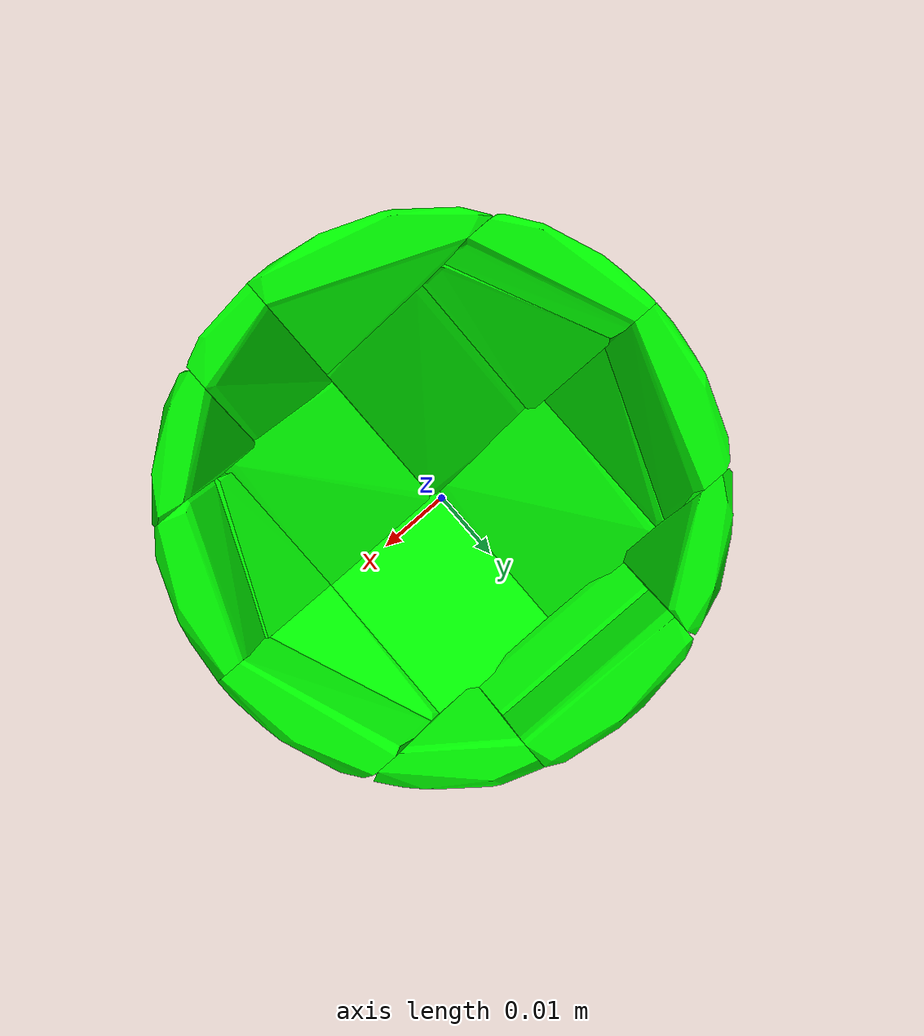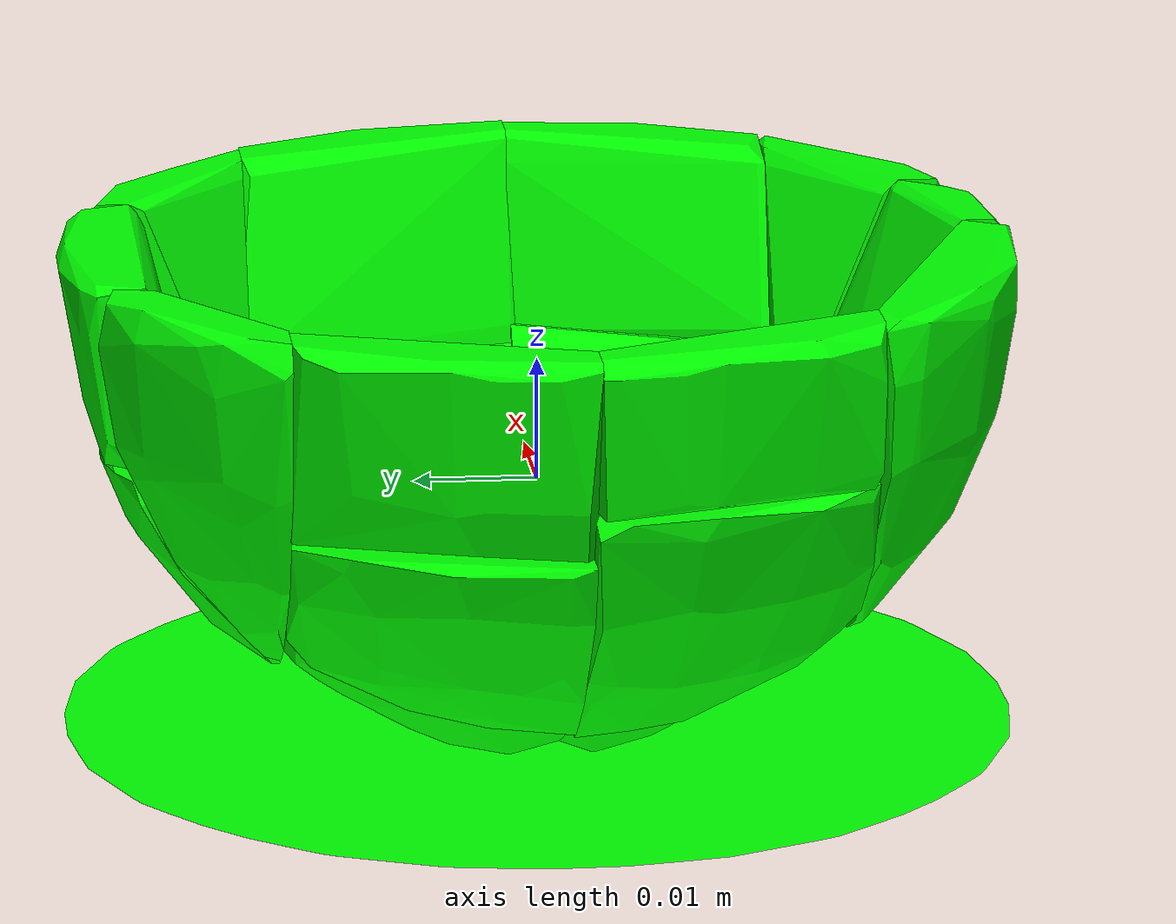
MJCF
<mujoco model="shapenetsem19">
  <asset>
    <mesh file="meshes/shapenetsem19/shapenetsem19_0.stl" name="shapenetsem19_0" scale="1 1 1"/>
    <mesh file="meshes/shapenetsem19/shapenetsem19_1.stl" name="shapenetsem19_1" scale="1 1 1"/>
    <mesh file="meshes/shapenetsem19/shapenetsem19_2.stl" name="shapenetsem19_2" scale="1 1 1"/>
    <mesh file="meshes/shapenetsem19/shapenetsem19_3.stl" name="shapenetsem19_3" scale="1 1 1"/>
    <mesh file="meshes/shapenetsem19/shapenetsem19_4.stl" name="shapenetsem19_4" scale="1 1 1"/>
    <mesh file="meshes/shapenetsem19/shapenetsem19_5.stl" name="shapenetsem19_5" scale="1 1 1"/>
    <mesh file="meshes/shapenetsem19/shapenetsem19_6.stl" name="shapenetsem19_6" scale="1 1 1"/>
    <mesh file="meshes/shapenetsem19/shapenetsem19_7.stl" name="shapenetsem19_7" scale="1 1 1"/>
    <mesh file="meshes/shapenetsem19/shapenetsem19_8.stl" name="shapenetsem19_8" scale="1 1 1"/>
    <mesh file="meshes/shapenetsem19/shapenetsem19_9.stl" name="shapenetsem19_9" scale="1 1 1"/>
    <mesh file="meshes/shapenetsem19/shapenetsem19_10.stl" name="shapenetsem19_10" scale="1 1 1"/>
    <mesh file="meshes/shapenetsem19/shapenetsem19_11.stl" name="shapenetsem19_11" scale="1 1 1"/>
    <mesh file="meshes/shapenetsem19/shapenetsem19_12.stl" name="shapenetsem19_12" scale="1 1 1"/>
    <mesh file="meshes/shapenetsem19/shapenetsem19_13.stl" name="shapenetsem19_13" scale="1 1 1"/>
    <mesh file="meshes/shapenetsem19/shapenetsem19_14.stl" name="shapenetsem19_14" scale="1 1 1"/>
    <mesh file="meshes/shapenetsem19/shapenetsem19_15.stl" name="shapenetsem19_15" scale="1 1 1"/>
    <mesh file="meshes/shapenetsem19/shapenetsem19_16.stl" name="shapenetsem19_16" scale="1 1 1"/>
    <mesh file="meshes/shapenetsem19/shapenetsem19_17.stl" name="shapenetsem19_17" scale="1 1 1"/>
    <mesh file="meshes/shapenetsem19/shapenetsem19_18.stl" name="shapenetsem19_18" scale="1 1 1"/>
    <mesh file="meshes/shapenetsem19/shapenetsem19_19.stl" name="shapenetsem19_19" scale="1 1 1"/>
  </asset>
  <worldbody>
    <body>
      <body name="collision">
        <geom pos="0 0 0" mesh="shapenetsem19_0" type="mesh" solimp="0.998 0.998 0.001" solref="0.001 1" density="100" friction="0.95 0.3 0.1" rgba="0 1 0 1" group="1" condim="4"/>
        <geom pos="0 0 0" mesh="shapenetsem19_1" type="mesh" solimp="0.998 0.998 0.001" solref="0.001 1" density="100" friction="0.95 0.3 0.1" rgba="0 1 0 1" group="1" condim="4"/>
        <geom pos="0 0 0" mesh="shapenetsem19_2" type="mesh" solimp="0.998 0.998 0.001" solref="0.001 1" density="100" friction="0.95 0.3 0.1" rgba="0 1 0 1" group="1" condim="4"/>
        <geom pos="0 0 0" mesh="shapenetsem19_3" type="mesh" solimp="0.998 0.998 0.001" solref="0.001 1" density="100" friction="0.95 0.3 0.1" rgba="0 1 0 1" group="1" condim="4"/>
        <geom pos="0 0 0" mesh="shapenetsem19_4" type="mesh" solimp="0.998 0.998 0.001" solref="0.001 1" density="100" friction="0.95 0.3 0.1" rgba="0 1 0 1" group="1" condim="4"/>
        <geom pos="0 0 0" mesh="shapenetsem19_5" type="mesh" solimp="0.998 0.998 0.001" solref="0.001 1" density="100" friction="0.95 0.3 0.1" rgba="0 1 0 1" group="1" condim="4"/>
        <geom pos="0 0 0" mesh="shapenetsem19_6" type="mesh" solimp="0.998 0.998 0.001" solref="0.001 1" density="100" friction="0.95 0.3 0.1" rgba="0 1 0 1" group="1" condim="4"/>
        <geom pos="0 0 0" mesh="shapenetsem19_7" type="mesh" solimp="0.998 0.998 0.001" solref="0.001 1" density="100" friction="0.95 0.3 0.1" rgba="0 1 0 1" group="1" condim="4"/>
        <geom pos="0 0 0" mesh="shapenetsem19_8" type="mesh" solimp="0.998 0.998 0.001" solref="0.001 1" density="100" friction="0.95 0.3 0.1" rgba="0 1 0 1" group="1" condim="4"/>
        <geom pos="0 0 0" mesh="shapenetsem19_9" type="mesh" solimp="0.998 0.998 0.001" solref="0.001 1" density="100" friction="0.95 0.3 0.1" rgba="0 1 0 1" group="1" condim="4"/>
        <geom pos="0 0 0" mesh="shapenetsem19_10" type="mesh" solimp="0.998 0.998 0.001" solref="0.001 1" density="100" friction="0.95 0.3 0.1" rgba="0 1 0 1" group="1" condim="4"/>
        <geom pos="0 0 0" mesh="shapenetsem19_11" type="mesh" solimp="0.998 0.998 0.001" solref="0.001 1" density="100" friction="0.95 0.3 0.1" rgba="0 1 0 1" group="1" condim="4"/>
        <geom pos="0 0 0" mesh="shapenetsem19_12" type="mesh" solimp="0.998 0.998 0.001" solref="0.001 1" density="100" friction="0.95 0.3 0.1" rgba="0 1 0 1" group="1" condim="4"/>
        <geom pos="0 0 0" mesh="shapenetsem19_13" type="mesh" solimp="0.998 0.998 0.001" solref="0.001 1" density="100" friction="0.95 0.3 0.1" rgba="0 1 0 1" group="1" condim="4"/>
        <geom pos="0 0 0" mesh="shapenetsem19_14" type="mesh" solimp="0.998 0.998 0.001" solref="0.001 1" density="100" friction="0.95 0.3 0.1" rgba="0 1 0 1" group="1" condim="4"/>
        <geom pos="0 0 0" mesh="shapenetsem19_15" type="mesh" solimp="0.998 0.998 0.001" solref="0.001 1" density="100" friction="0.95 0.3 0.1" rgba="0 1 0 1" group="1" condim="4"/>
        <geom pos="0 0 0" mesh="shapenetsem19_16" type="mesh" solimp="0.998 0.998 0.001" solref="0.001 1" density="100" friction="0.95 0.3 0.1" rgba="0 1 0 1" group="1" condim="4"/>
        <geom pos="0 0 0" mesh="shapenetsem19_17" type="mesh" solimp="0.998 0.998 0.001" solref="0.001 1" density="100" friction="0.95 0.3 0.1" rgba="0 1 0 1" group="1" condim="4"/>
        <geom pos="0 0 0" mesh="shapenetsem19_18" type="mesh" solimp="0.998 0.998 0.001" solref="0.001 1" density="100" friction="0.95 0.3 0.1" rgba="0 1 0 1" group="1" condim="4"/>
        <geom pos="0 0 0" mesh="shapenetsem19_19" type="mesh" solimp="0.998 0.998 0.001" solref="0.001 1" density="100" friction="0.95 0.3 0.1" rgba="0 1 0 1" group="1" condim="4"/>
      </body>
      <body name="visual">
        <geom pos="0 0 0" mesh="shapenetsem19_0" type="mesh" rgba="0 1 0 1" conaffinity="0" contype="0" group="0" mass="0.0001"/>
        <geom pos="0 0 0" mesh="shapenetsem19_1" type="mesh" rgba="0 1 0 1" conaffinity="0" contype="0" group="0" mass="0.0001"/>
        <geom pos="0 0 0" mesh="shapenetsem19_2" type="mesh" rgba="0 1 0 1" conaffinity="0" contype="0" group="0" mass="0.0001"/>
        <geom pos="0 0 0" mesh="shapenetsem19_3" type="mesh" rgba="0 1 0 1" conaffinity="0" contype="0" group="0" mass="0.0001"/>
        <geom pos="0 0 0" mesh="shapenetsem19_4" type="mesh" rgba="0 1 0 1" conaffinity="0" contype="0" group="0" mass="0.0001"/>
        <geom pos="0 0 0" mesh="shapenetsem19_5" type="mesh" rgba="0 1 0 1" conaffinity="0" contype="0" group="0" mass="0.0001"/>
        <geom pos="0 0 0" mesh="shapenetsem19_6" type="mesh" rgba="0 1 0 1" conaffinity="0" contype="0" group="0" mass="0.0001"/>
        <geom pos="0 0 0" mesh="shapenetsem19_7" type="mesh" rgba="0 1 0 1" conaffinity="0" contype="0" group="0" mass="0.0001"/>
        <geom pos="0 0 0" mesh="shapenetsem19_8" type="mesh" rgba="0 1 0 1" conaffinity="0" contype="0" group="0" mass="0.0001"/>
        <geom pos="0 0 0" mesh="shapenetsem19_9" type="mesh" rgba="0 1 0 1" conaffinity="0" contype="0" group="0" mass="0.0001"/>
        <geom pos="0 0 0" mesh="shapenetsem19_10" type="mesh" rgba="0 1 0 1" conaffinity="0" contype="0" group="0" mass="0.0001"/>
        <geom pos="0 0 0" mesh="shapenetsem19_11" type="mesh" rgba="0 1 0 1" conaffinity="0" contype="0" group="0" mass="0.0001"/>
        <geom pos="0 0 0" mesh="shapenetsem19_12" type="mesh" rgba="0 1 0 1" conaffinity="0" contype="0" group="0" mass="0.0001"/>
        <geom pos="0 0 0" mesh="shapenetsem19_13" type="mesh" rgba="0 1 0 1" conaffinity="0" contype="0" group="0" mass="0.0001"/>
        <geom pos="0 0 0" mesh="shapenetsem19_14" type="mesh" rgba="0 1 0 1" conaffinity="0" contype="0" group="0" mass="0.0001"/>
        <geom pos="0 0 0" mesh="shapenetsem19_15" type="mesh" rgba="0 1 0 1" conaffinity="0" contype="0" group="0" mass="0.0001"/>
        <geom pos="0 0 0" mesh="shapenetsem19_16" type="mesh" rgba="0 1 0 1" conaffinity="0" contype="0" group="0" mass="0.0001"/>
        <geom pos="0 0 0" mesh="shapenetsem19_17" type="mesh" rgba="0 1 0 1" conaffinity="0" contype="0" group="0" mass="0.0001"/>
        <geom pos="0 0 0" mesh="shapenetsem19_18" type="mesh" rgba="0 1 0 1" conaffinity="0" contype="0" group="0" mass="0.0001"/>
        <geom pos="0 0 0" mesh="shapenetsem19_19" type="mesh" rgba="0 1 0 1" conaffinity="0" contype="0" group="0" mass="0.0001"/>
      </body>
      <site rgba="0 0 0 0" size="0.005" pos="0 0 -0.06" name="bottom_site"/>
      <site rgba="0 0 0 0" size="0.005" pos="0 0 0.04" name="top_site"/>
      <site rgba="0 0 0 0" size="0.005" pos="0.025 0.025 0" name="horizontal_radius_site"/>
    </body>
  </worldbody>
</mujoco>
